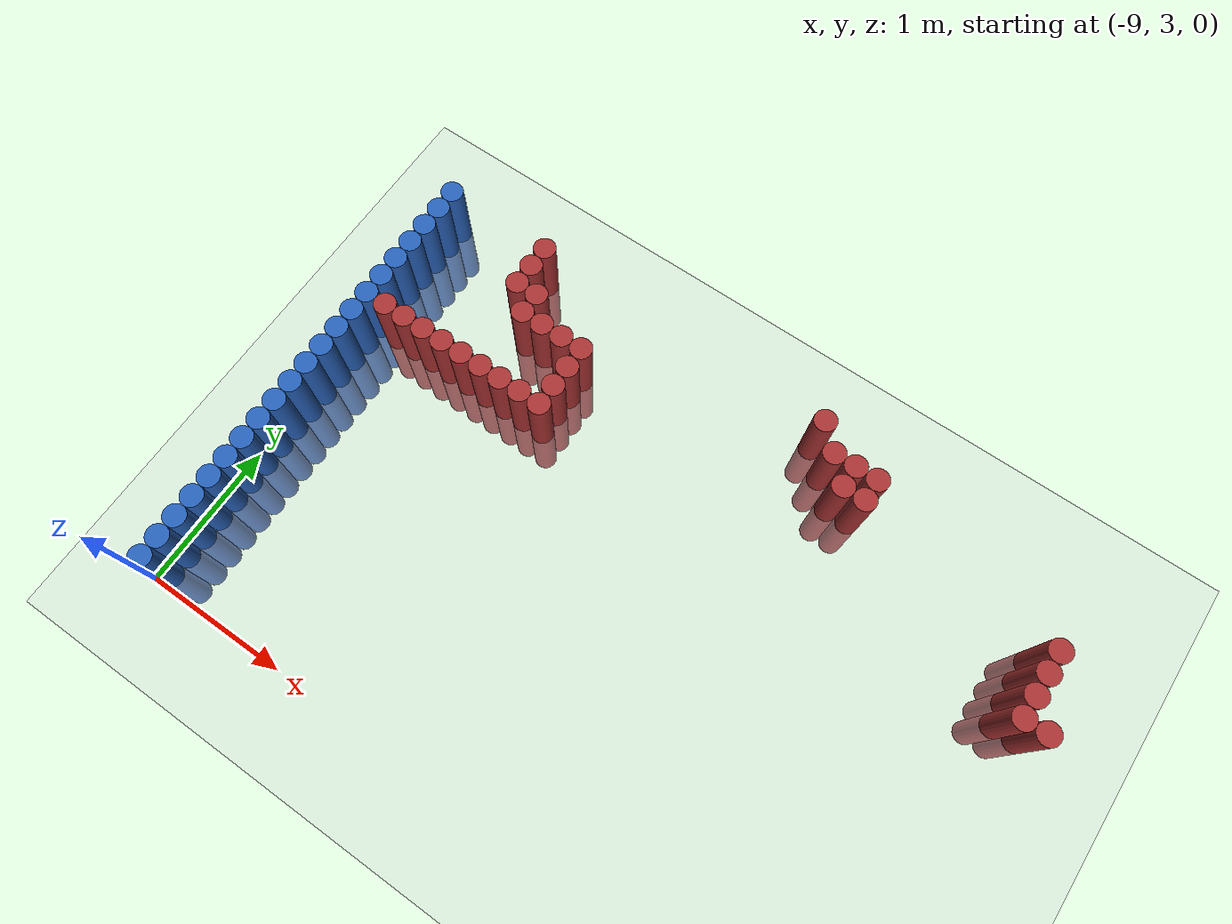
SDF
<sdf version="1.6">
 <world name="default">
  <model name="ground_plane">
   <static>1</static>
   <link name="link">
    <collision name="collision">
     <geometry><plane><normal>0 0 1</normal><size>100 100</size></plane></geometry>
     <surface><friction><ode><mu>100</mu><mu2>50</mu2></ode></friction></surface>
    </collision>
    <visual name="visual">
     <cast_shadows>0</cast_shadows>
     <geometry><plane><normal>0 0 1</normal><size>100 100</size></plane></geometry>
     <material>
      <script><uri>file://media/materials/scripts/gazebo.material</uri><name>Gazebo/Grey</name></script>
     </material>
    </visual>
   </link>
  </model>
  <model name="unit_cylinder_98">
   <static>1</static>
   <pose>-8.925000 3.075000 0.000000 0.000000 0.000000 0.000000</pose>
   <link name="link">
    <inertial>
     <mass>1</mass>
     <inertia><ixx>0.145833</ixx><ixy>0</ixy><ixz>0</ixz><iyy>0.145833</iyy><iyz>0</iyz><izz>0.125</izz></inertia>
    </inertial>
    <collision name="collision">
     <geometry><cylinder><radius>0.075000</radius><length>1</length></cylinder></geometry>
    </collision>
    <visual name="visual">
     <geometry><cylinder><radius>0.075000</radius><length>1</length></cylinder></geometry>
     <material>
      <ambient>0.152000 0.379000 0.720000 1</ambient>
      <diffuse>0.152000 0.379000 0.720000 1</diffuse>
     </material>
     <material>
      <script><name>Gazebo/Grey</name><uri>file://media/materials/scripts/gazebo.material</uri></script>
     </material>
    </visual>
   </link>
  </model>
  <model name="unit_cylinder_100">
   <static>1</static>
   <pose>-8.925000 3.225000 0.000000 0.000000 0.000000 0.000000</pose>
   <link name="link">
    <inertial>
     <mass>1</mass>
     <inertia><ixx>0.145833</ixx><ixy>0</ixy><ixz>0</ixz><iyy>0.145833</iyy><iyz>0</iyz><izz>0.125</izz></inertia>
    </inertial>
    <collision name="collision">
     <geometry><cylinder><radius>0.075000</radius><length>1</length></cylinder></geometry>
    </collision>
    <visual name="visual">
     <geometry><cylinder><radius>0.075000</radius><length>1</length></cylinder></geometry>
     <material>
      <ambient>0.152000 0.379000 0.720000 1</ambient>
      <diffuse>0.152000 0.379000 0.720000 1</diffuse>
     </material>
     <material>
      <script><name>Gazebo/Grey</name><uri>file://media/materials/scripts/gazebo.material</uri></script>
     </material>
    </visual>
   </link>
  </model>
  <model name="unit_cylinder_102">
   <static>1</static>
   <pose>-8.925000 3.375000 0.000000 0.000000 0.000000 0.000000</pose>
   <link name="link">
    <inertial>
     <mass>1</mass>
     <inertia><ixx>0.145833</ixx><ixy>0</ixy><ixz>0</ixz><iyy>0.145833</iyy><iyz>0</iyz><izz>0.125</izz></inertia>
    </inertial>
    <collision name="collision">
     <geometry><cylinder><radius>0.075000</radius><length>1</length></cylinder></geometry>
    </collision>
    <visual name="visual">
     <geometry><cylinder><radius>0.075000</radius><length>1</length></cylinder></geometry>
     <material>
      <ambient>0.152000 0.379000 0.720000 1</ambient>
      <diffuse>0.152000 0.379000 0.720000 1</diffuse>
     </material>
     <material>
      <script><name>Gazebo/Grey</name><uri>file://media/materials/scripts/gazebo.material</uri></script>
     </material>
    </visual>
   </link>
  </model>
  <model name="unit_cylinder_104">
   <static>1</static>
   <pose>-8.925000 3.525000 0.000000 0.000000 0.000000 0.000000</pose>
   <link name="link">
    <inertial>
     <mass>1</mass>
     <inertia><ixx>0.145833</ixx><ixy>0</ixy><ixz>0</ixz><iyy>0.145833</iyy><iyz>0</iyz><izz>0.125</izz></inertia>
    </inertial>
    <collision name="collision">
     <geometry><cylinder><radius>0.075000</radius><length>1</length></cylinder></geometry>
    </collision>
    <visual name="visual">
     <geometry><cylinder><radius>0.075000</radius><length>1</length></cylinder></geometry>
     <material>
      <ambient>0.152000 0.379000 0.720000 1</ambient>
      <diffuse>0.152000 0.379000 0.720000 1</diffuse>
     </material>
     <material>
      <script><name>Gazebo/Grey</name><uri>file://media/materials/scripts/gazebo.material</uri></script>
     </material>
    </visual>
   </link>
  </model>
  <model name="unit_cylinder_106">
   <static>1</static>
   <pose>-8.925000 3.675000 0.000000 0.000000 0.000000 0.000000</pose>
   <link name="link">
    <inertial>
     <mass>1</mass>
     <inertia><ixx>0.145833</ixx><ixy>0</ixy><ixz>0</ixz><iyy>0.145833</iyy><iyz>0</iyz><izz>0.125</izz></inertia>
    </inertial>
    <collision name="collision">
     <geometry><cylinder><radius>0.075000</radius><length>1</length></cylinder></geometry>
    </collision>
    <visual name="visual">
     <geometry><cylinder><radius>0.075000</radius><length>1</length></cylinder></geometry>
     <material>
      <ambient>0.152000 0.379000 0.720000 1</ambient>
      <diffuse>0.152000 0.379000 0.720000 1</diffuse>
     </material>
     <material>
      <script><name>Gazebo/Grey</name><uri>file://media/materials/scripts/gazebo.material</uri></script>
     </material>
    </visual>
   </link>
  </model>
  <model name="unit_cylinder_108">
   <static>1</static>
   <pose>-8.925000 3.825000 0.000000 0.000000 0.000000 0.000000</pose>
   <link name="link">
    <inertial>
     <mass>1</mass>
     <inertia><ixx>0.145833</ixx><ixy>0</ixy><ixz>0</ixz><iyy>0.145833</iyy><iyz>0</iyz><izz>0.125</izz></inertia>
    </inertial>
    <collision name="collision">
     <geometry><cylinder><radius>0.075000</radius><length>1</length></cylinder></geometry>
    </collision>
    <visual name="visual">
     <geometry><cylinder><radius>0.075000</radius><length>1</length></cylinder></geometry>
     <material>
      <ambient>0.152000 0.379000 0.720000 1</ambient>
      <diffuse>0.152000 0.379000 0.720000 1</diffuse>
     </material>
     <material>
      <script><name>Gazebo/Grey</name><uri>file://media/materials/scripts/gazebo.material</uri></script>
     </material>
    </visual>
   </link>
  </model>
  <model name="unit_cylinder_110">
   <static>1</static>
   <pose>-8.925000 3.975000 0.000000 0.000000 0.000000 0.000000</pose>
   <link name="link">
    <inertial>
     <mass>1</mass>
     <inertia><ixx>0.145833</ixx><ixy>0</ixy><ixz>0</ixz><iyy>0.145833</iyy><iyz>0</iyz><izz>0.125</izz></inertia>
    </inertial>
    <collision name="collision">
     <geometry><cylinder><radius>0.075000</radius><length>1</length></cylinder></geometry>
    </collision>
    <visual name="visual">
     <geometry><cylinder><radius>0.075000</radius><length>1</length></cylinder></geometry>
     <material>
      <ambient>0.152000 0.379000 0.720000 1</ambient>
      <diffuse>0.152000 0.379000 0.720000 1</diffuse>
     </material>
     <material>
      <script><name>Gazebo/Grey</name><uri>file://media/materials/scripts/gazebo.material</uri></script>
     </material>
    </visual>
   </link>
  </model>
  <model name="unit_cylinder_112">
   <static>1</static>
   <pose>-8.925000 4.125000 0.000000 0.000000 0.000000 0.000000</pose>
   <link name="link">
    <inertial>
     <mass>1</mass>
     <inertia><ixx>0.145833</ixx><ixy>0</ixy><ixz>0</ixz><iyy>0.145833</iyy><iyz>0</iyz><izz>0.125</izz></inertia>
    </inertial>
    <collision name="collision">
     <geometry><cylinder><radius>0.075000</radius><length>1</length></cylinder></geometry>
    </collision>
    <visual name="visual">
     <geometry><cylinder><radius>0.075000</radius><length>1</length></cylinder></geometry>
     <material>
      <ambient>0.152000 0.379000 0.720000 1</ambient>
      <diffuse>0.152000 0.379000 0.720000 1</diffuse>
     </material>
     <material>
      <script><name>Gazebo/Grey</name><uri>file://media/materials/scripts/gazebo.material</uri></script>
     </material>
    </visual>
   </link>
  </model>
  <model name="unit_cylinder_114">
   <static>1</static>
   <pose>-8.925000 4.275000 0.000000 0.000000 0.000000 0.000000</pose>
   <link name="link">
    <inertial>
     <mass>1</mass>
     <inertia><ixx>0.145833</ixx><ixy>0</ixy><ixz>0</ixz><iyy>0.145833</iyy><iyz>0</iyz><izz>0.125</izz></inertia>
    </inertial>
    <collision name="collision">
     <geometry><cylinder><radius>0.075000</radius><length>1</length></cylinder></geometry>
    </collision>
    <visual name="visual">
     <geometry><cylinder><radius>0.075000</radius><length>1</length></cylinder></geometry>
     <material>
      <ambient>0.152000 0.379000 0.720000 1</ambient>
      <diffuse>0.152000 0.379000 0.720000 1</diffuse>
     </material>
     <material>
      <script><name>Gazebo/Grey</name><uri>file://media/materials/scripts/gazebo.material</uri></script>
     </material>
    </visual>
   </link>
  </model>
  <model name="unit_cylinder_116">
   <static>1</static>
   <pose>-8.925000 4.425000 0.000000 0.000000 0.000000 0.000000</pose>
   <link name="link">
    <inertial>
     <mass>1</mass>
     <inertia><ixx>0.145833</ixx><ixy>0</ixy><ixz>0</ixz><iyy>0.145833</iyy><iyz>0</iyz><izz>0.125</izz></inertia>
    </inertial>
    <collision name="collision">
     <geometry><cylinder><radius>0.075000</radius><length>1</length></cylinder></geometry>
    </collision>
    <visual name="visual">
     <geometry><cylinder><radius>0.075000</radius><length>1</length></cylinder></geometry>
     <material>
      <ambient>0.152000 0.379000 0.720000 1</ambient>
      <diffuse>0.152000 0.379000 0.720000 1</diffuse>
     </material>
     <material>
      <script><name>Gazebo/Grey</name><uri>file://media/materials/scripts/gazebo.material</uri></script>
     </material>
    </visual>
   </link>
  </model>
  <model name="unit_cylinder_118">
   <static>1</static>
   <pose>-8.925000 4.575000 0.000000 0.000000 0.000000 0.000000</pose>
   <link name="link">
    <inertial>
     <mass>1</mass>
     <inertia><ixx>0.145833</ixx><ixy>0</ixy><ixz>0</ixz><iyy>0.145833</iyy><iyz>0</iyz><izz>0.125</izz></inertia>
    </inertial>
    <collision name="collision">
     <geometry><cylinder><radius>0.075000</radius><length>1</length></cylinder></geometry>
    </collision>
    <visual name="visual">
     <geometry><cylinder><radius>0.075000</radius><length>1</length></cylinder></geometry>
     <material>
      <ambient>0.152000 0.379000 0.720000 1</ambient>
      <diffuse>0.152000 0.379000 0.720000 1</diffuse>
     </material>
     <material>
      <script><name>Gazebo/Grey</name><uri>file://media/materials/scripts/gazebo.material</uri></script>
     </material>
    </visual>
   </link>
  </model>
  <model name="unit_cylinder_120">
   <static>1</static>
   <pose>-8.925000 4.725000 0.000000 0.000000 0.000000 0.000000</pose>
   <link name="link">
    <inertial>
     <mass>1</mass>
     <inertia><ixx>0.145833</ixx><ixy>0</ixy><ixz>0</ixz><iyy>0.145833</iyy><iyz>0</iyz><izz>0.125</izz></inertia>
    </inertial>
    <collision name="collision">
     <geometry><cylinder><radius>0.075000</radius><length>1</length></cylinder></geometry>
    </collision>
    <visual name="visual">
     <geometry><cylinder><radius>0.075000</radius><length>1</length></cylinder></geometry>
     <material>
      <ambient>0.152000 0.379000 0.720000 1</ambient>
      <diffuse>0.152000 0.379000 0.720000 1</diffuse>
     </material>
     <material>
      <script><name>Gazebo/Grey</name><uri>file://media/materials/scripts/gazebo.material</uri></script>
     </material>
    </visual>
   </link>
  </model>
  <model name="unit_cylinder_122">
   <static>1</static>
   <pose>-8.925000 4.875000 0.000000 0.000000 0.000000 0.000000</pose>
   <link name="link">
    <inertial>
     <mass>1</mass>
     <inertia><ixx>0.145833</ixx><ixy>0</ixy><ixz>0</ixz><iyy>0.145833</iyy><iyz>0</iyz><izz>0.125</izz></inertia>
    </inertial>
    <collision name="collision">
     <geometry><cylinder><radius>0.075000</radius><length>1</length></cylinder></geometry>
    </collision>
    <visual name="visual">
     <geometry><cylinder><radius>0.075000</radius><length>1</length></cylinder></geometry>
     <material>
      <ambient>0.152000 0.379000 0.720000 1</ambient>
      <diffuse>0.152000 0.379000 0.720000 1</diffuse>
     </material>
     <material>
      <script><name>Gazebo/Grey</name><uri>file://media/materials/scripts/gazebo.material</uri></script>
     </material>
    </visual>
   </link>
  </model>
  <model name="unit_cylinder_124">
   <static>1</static>
   <pose>-8.925000 5.025000 0.000000 0.000000 0.000000 0.000000</pose>
   <link name="link">
    <inertial>
     <mass>1</mass>
     <inertia><ixx>0.145833</ixx><ixy>0</ixy><ixz>0</ixz><iyy>0.145833</iyy><iyz>0</iyz><izz>0.125</izz></inertia>
    </inertial>
    <collision name="collision">
     <geometry><cylinder><radius>0.075000</radius><length>1</length></cylinder></geometry>
    </collision>
    <visual name="visual">
     <geometry><cylinder><radius>0.075000</radius><length>1</length></cylinder></geometry>
     <material>
      <ambient>0.152000 0.379000 0.720000 1</ambient>
      <diffuse>0.152000 0.379000 0.720000 1</diffuse>
     </material>
     <material>
      <script><name>Gazebo/Grey</name><uri>file://media/materials/scripts/gazebo.material</uri></script>
     </material>
    </visual>
   </link>
  </model>
  <model name="unit_cylinder_125">
   <static>1</static>
   <pose>-8.925000 5.175000 0.000000 0.000000 0.000000 0.000000</pose>
   <link name="link">
    <inertial>
     <mass>1</mass>
     <inertia><ixx>0.145833</ixx><ixy>0</ixy><ixz>0</ixz><iyy>0.145833</iyy><iyz>0</iyz><izz>0.125</izz></inertia>
    </inertial>
    <collision name="collision">
     <geometry><cylinder><radius>0.075000</radius><length>1</length></cylinder></geometry>
    </collision>
    <visual name="visual">
     <geometry><cylinder><radius>0.075000</radius><length>1</length></cylinder></geometry>
     <material>
      <ambient>0.152000 0.379000 0.720000 1</ambient>
      <diffuse>0.152000 0.379000 0.720000 1</diffuse>
     </material>
     <material>
      <script><name>Gazebo/Grey</name><uri>file://media/materials/scripts/gazebo.material</uri></script>
     </material>
    </visual>
   </link>
  </model>
  <model name="unit_cylinder_126">
   <static>1</static>
   <pose>-8.925000 5.325000 0.000000 0.000000 0.000000 0.000000</pose>
   <link name="link">
    <inertial>
     <mass>1</mass>
     <inertia><ixx>0.145833</ixx><ixy>0</ixy><ixz>0</ixz><iyy>0.145833</iyy><iyz>0</iyz><izz>0.125</izz></inertia>
    </inertial>
    <collision name="collision">
     <geometry><cylinder><radius>0.075000</radius><length>1</length></cylinder></geometry>
    </collision>
    <visual name="visual">
     <geometry><cylinder><radius>0.075000</radius><length>1</length></cylinder></geometry>
     <material>
      <ambient>0.152000 0.379000 0.720000 1</ambient>
      <diffuse>0.152000 0.379000 0.720000 1</diffuse>
     </material>
     <material>
      <script><name>Gazebo/Grey</name><uri>file://media/materials/scripts/gazebo.material</uri></script>
     </material>
    </visual>
   </link>
  </model>
  <model name="unit_cylinder_127">
   <static>1</static>
   <pose>-8.925000 5.475000 0.000000 0.000000 0.000000 0.000000</pose>
   <link name="link">
    <inertial>
     <mass>1</mass>
     <inertia><ixx>0.145833</ixx><ixy>0</ixy><ixz>0</ixz><iyy>0.145833</iyy><iyz>0</iyz><izz>0.125</izz></inertia>
    </inertial>
    <collision name="collision">
     <geometry><cylinder><radius>0.075000</radius><length>1</length></cylinder></geometry>
    </collision>
    <visual name="visual">
     <geometry><cylinder><radius>0.075000</radius><length>1</length></cylinder></geometry>
     <material>
      <ambient>0.152000 0.379000 0.720000 1</ambient>
      <diffuse>0.152000 0.379000 0.720000 1</diffuse>
     </material>
     <material>
      <script><name>Gazebo/Grey</name><uri>file://media/materials/scripts/gazebo.material</uri></script>
     </material>
    </visual>
   </link>
  </model>
  <model name="unit_cylinder_128">
   <static>1</static>
   <pose>-8.925000 5.625000 0.000000 0.000000 0.000000 0.000000</pose>
   <link name="link">
    <inertial>
     <mass>1</mass>
     <inertia><ixx>0.145833</ixx><ixy>0</ixy><ixz>0</ixz><iyy>0.145833</iyy><iyz>0</iyz><izz>0.125</izz></inertia>
    </inertial>
    <collision name="collision">
     <geometry><cylinder><radius>0.075000</radius><length>1</length></cylinder></geometry>
    </collision>
    <visual name="visual">
     <geometry><cylinder><radius>0.075000</radius><length>1</length></cylinder></geometry>
     <material>
      <ambient>0.152000 0.379000 0.720000 1</ambient>
      <diffuse>0.152000 0.379000 0.720000 1</diffuse>
     </material>
     <material>
      <script><name>Gazebo/Grey</name><uri>file://media/materials/scripts/gazebo.material</uri></script>
     </material>
    </visual>
   </link>
  </model>
  <model name="unit_cylinder_129">
   <static>1</static>
   <pose>-8.925000 5.775000 0.000000 0.000000 0.000000 0.000000</pose>
   <link name="link">
    <inertial>
     <mass>1</mass>
     <inertia><ixx>0.145833</ixx><ixy>0</ixy><ixz>0</ixz><iyy>0.145833</iyy><iyz>0</iyz><izz>0.125</izz></inertia>
    </inertial>
    <collision name="collision">
     <geometry><cylinder><radius>0.075000</radius><length>1</length></cylinder></geometry>
    </collision>
    <visual name="visual">
     <geometry><cylinder><radius>0.075000</radius><length>1</length></cylinder></geometry>
     <material>
      <ambient>0.152000 0.379000 0.720000 1</ambient>
      <diffuse>0.152000 0.379000 0.720000 1</diffuse>
     </material>
     <material>
      <script><name>Gazebo/Grey</name><uri>file://media/materials/scripts/gazebo.material</uri></script>
     </material>
    </visual>
   </link>
  </model>
  <model name="unit_cylinder_130">
   <static>1</static>
   <pose>-8.925000 5.925000 0.000000 0.000000 0.000000 0.000000</pose>
   <link name="link">
    <inertial>
     <mass>1</mass>
     <inertia><ixx>0.145833</ixx><ixy>0</ixy><ixz>0</ixz><iyy>0.145833</iyy><iyz>0</iyz><izz>0.125</izz></inertia>
    </inertial>
    <collision name="collision">
     <geometry><cylinder><radius>0.075000</radius><length>1</length></cylinder></geometry>
    </collision>
    <visual name="visual">
     <geometry><cylinder><radius>0.075000</radius><length>1</length></cylinder></geometry>
     <material>
      <ambient>0.152000 0.379000 0.720000 1</ambient>
      <diffuse>0.152000 0.379000 0.720000 1</diffuse>
     </material>
     <material>
      <script><name>Gazebo/Grey</name><uri>file://media/materials/scripts/gazebo.material</uri></script>
     </material>
    </visual>
   </link>
  </model>
  <model name="unit_cylinder_131">
   <static>1</static>
   <pose>-8.925000 6.075000 0.000000 0.000000 0.000000 0.000000</pose>
   <link name="link">
    <inertial>
     <mass>1</mass>
     <inertia><ixx>0.145833</ixx><ixy>0</ixy><ixz>0</ixz><iyy>0.145833</iyy><iyz>0</iyz><izz>0.125</izz></inertia>
    </inertial>
    <collision name="collision">
     <geometry><cylinder><radius>0.075000</radius><length>1</length></cylinder></geometry>
    </collision>
    <visual name="visual">
     <geometry><cylinder><radius>0.075000</radius><length>1</length></cylinder></geometry>
     <material>
      <ambient>0.152000 0.379000 0.720000 1</ambient>
      <diffuse>0.152000 0.379000 0.720000 1</diffuse>
     </material>
     <material>
      <script><name>Gazebo/Grey</name><uri>file://media/materials/scripts/gazebo.material</uri></script>
     </material>
    </visual>
   </link>
  </model>
  <model name="unit_cylinder_155">
   <static>1</static>
   <pose>-8.775000 5.175000 0.000000 0.000000 0.000000 0.000000</pose>
   <link name="link">
    <inertial>
     <mass>1</mass>
     <inertia><ixx>0.145833</ixx><ixy>0</ixy><ixz>0</ixz><iyy>0.145833</iyy><iyz>0</iyz><izz>0.125</izz></inertia>
    </inertial>
    <collision name="collision">
     <geometry><cylinder><radius>0.075000</radius><length>1</length></cylinder></geometry>
    </collision>
    <visual name="visual">
     <geometry><cylinder><radius>0.075000</radius><length>1</length></cylinder></geometry>
     <material>
      <ambient>0.648000 0.192000 0.192000 1</ambient>
      <diffuse>0.648000 0.192000 0.192000 1</diffuse>
     </material>
     <material>
      <script><name>Gazebo/Grey</name><uri>file://media/materials/scripts/gazebo.material</uri></script>
     </material>
    </visual>
   </link>
  </model>
  <model name="unit_cylinder_157">
   <static>1</static>
   <pose>-8.625000 5.175000 0.000000 0.000000 0.000000 0.000000</pose>
   <link name="link">
    <inertial>
     <mass>1</mass>
     <inertia><ixx>0.145833</ixx><ixy>0</ixy><ixz>0</ixz><iyy>0.145833</iyy><iyz>0</iyz><izz>0.125</izz></inertia>
    </inertial>
    <collision name="collision">
     <geometry><cylinder><radius>0.075000</radius><length>1</length></cylinder></geometry>
    </collision>
    <visual name="visual">
     <geometry><cylinder><radius>0.075000</radius><length>1</length></cylinder></geometry>
     <material>
      <ambient>0.648000 0.192000 0.192000 1</ambient>
      <diffuse>0.648000 0.192000 0.192000 1</diffuse>
     </material>
     <material>
      <script><name>Gazebo/Grey</name><uri>file://media/materials/scripts/gazebo.material</uri></script>
     </material>
    </visual>
   </link>
  </model>
  <model name="unit_cylinder_159">
   <static>1</static>
   <pose>-8.475000 5.175000 0.000000 0.000000 0.000000 0.000000</pose>
   <link name="link">
    <inertial>
     <mass>1</mass>
     <inertia><ixx>0.145833</ixx><ixy>0</ixy><ixz>0</ixz><iyy>0.145833</iyy><iyz>0</iyz><izz>0.125</izz></inertia>
    </inertial>
    <collision name="collision">
     <geometry><cylinder><radius>0.075000</radius><length>1</length></cylinder></geometry>
    </collision>
    <visual name="visual">
     <geometry><cylinder><radius>0.075000</radius><length>1</length></cylinder></geometry>
     <material>
      <ambient>0.648000 0.192000 0.192000 1</ambient>
      <diffuse>0.648000 0.192000 0.192000 1</diffuse>
     </material>
     <material>
      <script><name>Gazebo/Grey</name><uri>file://media/materials/scripts/gazebo.material</uri></script>
     </material>
    </visual>
   </link>
  </model>
  <model name="unit_cylinder_161">
   <static>1</static>
   <pose>-8.325000 5.175000 0.000000 0.000000 0.000000 0.000000</pose>
   <link name="link">
    <inertial>
     <mass>1</mass>
     <inertia><ixx>0.145833</ixx><ixy>0</ixy><ixz>0</ixz><iyy>0.145833</iyy><iyz>0</iyz><izz>0.125</izz></inertia>
    </inertial>
    <collision name="collision">
     <geometry><cylinder><radius>0.075000</radius><length>1</length></cylinder></geometry>
    </collision>
    <visual name="visual">
     <geometry><cylinder><radius>0.075000</radius><length>1</length></cylinder></geometry>
     <material>
      <ambient>0.648000 0.192000 0.192000 1</ambient>
      <diffuse>0.648000 0.192000 0.192000 1</diffuse>
     </material>
     <material>
      <script><name>Gazebo/Grey</name><uri>file://media/materials/scripts/gazebo.material</uri></script>
     </material>
    </visual>
   </link>
  </model>
  <model name="unit_cylinder_163">
   <static>1</static>
   <pose>-8.175000 5.175000 0.000000 0.000000 0.000000 0.000000</pose>
   <link name="link">
    <inertial>
     <mass>1</mass>
     <inertia><ixx>0.145833</ixx><ixy>0</ixy><ixz>0</ixz><iyy>0.145833</iyy><iyz>0</iyz><izz>0.125</izz></inertia>
    </inertial>
    <collision name="collision">
     <geometry><cylinder><radius>0.075000</radius><length>1</length></cylinder></geometry>
    </collision>
    <visual name="visual">
     <geometry><cylinder><radius>0.075000</radius><length>1</length></cylinder></geometry>
     <material>
      <ambient>0.648000 0.192000 0.192000 1</ambient>
      <diffuse>0.648000 0.192000 0.192000 1</diffuse>
     </material>
     <material>
      <script><name>Gazebo/Grey</name><uri>file://media/materials/scripts/gazebo.material</uri></script>
     </material>
    </visual>
   </link>
  </model>
  <model name="unit_cylinder_164">
   <static>1</static>
   <pose>-8.175000 5.775000 0.000000 0.000000 0.000000 0.000000</pose>
   <link name="link">
    <inertial>
     <mass>1</mass>
     <inertia><ixx>0.145833</ixx><ixy>0</ixy><ixz>0</ixz><iyy>0.145833</iyy><iyz>0</iyz><izz>0.125</izz></inertia>
    </inertial>
    <collision name="collision">
     <geometry><cylinder><radius>0.075000</radius><length>1</length></cylinder></geometry>
    </collision>
    <visual name="visual">
     <geometry><cylinder><radius>0.075000</radius><length>1</length></cylinder></geometry>
     <material>
      <ambient>0.648000 0.192000 0.192000 1</ambient>
      <diffuse>0.648000 0.192000 0.192000 1</diffuse>
     </material>
     <material>
      <script><name>Gazebo/Grey</name><uri>file://media/materials/scripts/gazebo.material</uri></script>
     </material>
    </visual>
   </link>
  </model>
  <model name="unit_cylinder_165">
   <static>1</static>
   <pose>-8.175000 5.925000 0.000000 0.000000 0.000000 0.000000</pose>
   <link name="link">
    <inertial>
     <mass>1</mass>
     <inertia><ixx>0.145833</ixx><ixy>0</ixy><ixz>0</ixz><iyy>0.145833</iyy><iyz>0</iyz><izz>0.125</izz></inertia>
    </inertial>
    <collision name="collision">
     <geometry><cylinder><radius>0.075000</radius><length>1</length></cylinder></geometry>
    </collision>
    <visual name="visual">
     <geometry><cylinder><radius>0.075000</radius><length>1</length></cylinder></geometry>
     <material>
      <ambient>0.648000 0.192000 0.192000 1</ambient>
      <diffuse>0.648000 0.192000 0.192000 1</diffuse>
     </material>
     <material>
      <script><name>Gazebo/Grey</name><uri>file://media/materials/scripts/gazebo.material</uri></script>
     </material>
    </visual>
   </link>
  </model>
  <model name="unit_cylinder_166">
   <static>1</static>
   <pose>-8.175000 6.075000 0.000000 0.000000 0.000000 0.000000</pose>
   <link name="link">
    <inertial>
     <mass>1</mass>
     <inertia><ixx>0.145833</ixx><ixy>0</ixy><ixz>0</ixz><iyy>0.145833</iyy><iyz>0</iyz><izz>0.125</izz></inertia>
    </inertial>
    <collision name="collision">
     <geometry><cylinder><radius>0.075000</radius><length>1</length></cylinder></geometry>
    </collision>
    <visual name="visual">
     <geometry><cylinder><radius>0.075000</radius><length>1</length></cylinder></geometry>
     <material>
      <ambient>0.648000 0.192000 0.192000 1</ambient>
      <diffuse>0.648000 0.192000 0.192000 1</diffuse>
     </material>
     <material>
      <script><name>Gazebo/Grey</name><uri>file://media/materials/scripts/gazebo.material</uri></script>
     </material>
    </visual>
   </link>
  </model>
  <model name="unit_cylinder_184">
   <static>1</static>
   <pose>-8.025000 5.175000 0.000000 0.000000 0.000000 0.000000</pose>
   <link name="link">
    <inertial>
     <mass>1</mass>
     <inertia><ixx>0.145833</ixx><ixy>0</ixy><ixz>0</ixz><iyy>0.145833</iyy><iyz>0</iyz><izz>0.125</izz></inertia>
    </inertial>
    <collision name="collision">
     <geometry><cylinder><radius>0.075000</radius><length>1</length></cylinder></geometry>
    </collision>
    <visual name="visual">
     <geometry><cylinder><radius>0.075000</radius><length>1</length></cylinder></geometry>
     <material>
      <ambient>0.648000 0.192000 0.192000 1</ambient>
      <diffuse>0.648000 0.192000 0.192000 1</diffuse>
     </material>
     <material>
      <script><name>Gazebo/Grey</name><uri>file://media/materials/scripts/gazebo.material</uri></script>
     </material>
    </visual>
   </link>
  </model>
  <model name="unit_cylinder_185">
   <static>1</static>
   <pose>-8.025000 5.625000 0.000000 0.000000 0.000000 0.000000</pose>
   <link name="link">
    <inertial>
     <mass>1</mass>
     <inertia><ixx>0.145833</ixx><ixy>0</ixy><ixz>0</ixz><iyy>0.145833</iyy><iyz>0</iyz><izz>0.125</izz></inertia>
    </inertial>
    <collision name="collision">
     <geometry><cylinder><radius>0.075000</radius><length>1</length></cylinder></geometry>
    </collision>
    <visual name="visual">
     <geometry><cylinder><radius>0.075000</radius><length>1</length></cylinder></geometry>
     <material>
      <ambient>0.648000 0.192000 0.192000 1</ambient>
      <diffuse>0.648000 0.192000 0.192000 1</diffuse>
     </material>
     <material>
      <script><name>Gazebo/Grey</name><uri>file://media/materials/scripts/gazebo.material</uri></script>
     </material>
    </visual>
   </link>
  </model>
  <model name="unit_cylinder_186">
   <static>1</static>
   <pose>-8.025000 5.775000 0.000000 0.000000 0.000000 0.000000</pose>
   <link name="link">
    <inertial>
     <mass>1</mass>
     <inertia><ixx>0.145833</ixx><ixy>0</ixy><ixz>0</ixz><iyy>0.145833</iyy><iyz>0</iyz><izz>0.125</izz></inertia>
    </inertial>
    <collision name="collision">
     <geometry><cylinder><radius>0.075000</radius><length>1</length></cylinder></geometry>
    </collision>
    <visual name="visual">
     <geometry><cylinder><radius>0.075000</radius><length>1</length></cylinder></geometry>
     <material>
      <ambient>0.648000 0.192000 0.192000 1</ambient>
      <diffuse>0.648000 0.192000 0.192000 1</diffuse>
     </material>
     <material>
      <script><name>Gazebo/Grey</name><uri>file://media/materials/scripts/gazebo.material</uri></script>
     </material>
    </visual>
   </link>
  </model>
  <model name="unit_cylinder_190">
   <static>1</static>
   <pose>-7.875000 5.175000 0.000000 0.000000 0.000000 0.000000</pose>
   <link name="link">
    <inertial>
     <mass>1</mass>
     <inertia><ixx>0.145833</ixx><ixy>0</ixy><ixz>0</ixz><iyy>0.145833</iyy><iyz>0</iyz><izz>0.125</izz></inertia>
    </inertial>
    <collision name="collision">
     <geometry><cylinder><radius>0.075000</radius><length>1</length></cylinder></geometry>
    </collision>
    <visual name="visual">
     <geometry><cylinder><radius>0.075000</radius><length>1</length></cylinder></geometry>
     <material>
      <ambient>0.648000 0.192000 0.192000 1</ambient>
      <diffuse>0.648000 0.192000 0.192000 1</diffuse>
     </material>
     <material>
      <script><name>Gazebo/Grey</name><uri>file://media/materials/scripts/gazebo.material</uri></script>
     </material>
    </visual>
   </link>
  </model>
  <model name="unit_cylinder_191">
   <static>1</static>
   <pose>-7.875000 5.625000 0.000000 0.000000 0.000000 0.000000</pose>
   <link name="link">
    <inertial>
     <mass>1</mass>
     <inertia><ixx>0.145833</ixx><ixy>0</ixy><ixz>0</ixz><iyy>0.145833</iyy><iyz>0</iyz><izz>0.125</izz></inertia>
    </inertial>
    <collision name="collision">
     <geometry><cylinder><radius>0.075000</radius><length>1</length></cylinder></geometry>
    </collision>
    <visual name="visual">
     <geometry><cylinder><radius>0.075000</radius><length>1</length></cylinder></geometry>
     <material>
      <ambient>0.648000 0.192000 0.192000 1</ambient>
      <diffuse>0.648000 0.192000 0.192000 1</diffuse>
     </material>
     <material>
      <script><name>Gazebo/Grey</name><uri>file://media/materials/scripts/gazebo.material</uri></script>
     </material>
    </visual>
   </link>
  </model>
  <model name="unit_cylinder_194">
   <static>1</static>
   <pose>-7.725000 5.175000 0.000000 0.000000 0.000000 0.000000</pose>
   <link name="link">
    <inertial>
     <mass>1</mass>
     <inertia><ixx>0.145833</ixx><ixy>0</ixy><ixz>0</ixz><iyy>0.145833</iyy><iyz>0</iyz><izz>0.125</izz></inertia>
    </inertial>
    <collision name="collision">
     <geometry><cylinder><radius>0.075000</radius><length>1</length></cylinder></geometry>
    </collision>
    <visual name="visual">
     <geometry><cylinder><radius>0.075000</radius><length>1</length></cylinder></geometry>
     <material>
      <ambient>0.648000 0.192000 0.192000 1</ambient>
      <diffuse>0.648000 0.192000 0.192000 1</diffuse>
     </material>
     <material>
      <script><name>Gazebo/Grey</name><uri>file://media/materials/scripts/gazebo.material</uri></script>
     </material>
    </visual>
   </link>
  </model>
  <model name="unit_cylinder_195">
   <static>1</static>
   <pose>-7.725000 5.625000 0.000000 0.000000 0.000000 0.000000</pose>
   <link name="link">
    <inertial>
     <mass>1</mass>
     <inertia><ixx>0.145833</ixx><ixy>0</ixy><ixz>0</ixz><iyy>0.145833</iyy><iyz>0</iyz><izz>0.125</izz></inertia>
    </inertial>
    <collision name="collision">
     <geometry><cylinder><radius>0.075000</radius><length>1</length></cylinder></geometry>
    </collision>
    <visual name="visual">
     <geometry><cylinder><radius>0.075000</radius><length>1</length></cylinder></geometry>
     <material>
      <ambient>0.648000 0.192000 0.192000 1</ambient>
      <diffuse>0.648000 0.192000 0.192000 1</diffuse>
     </material>
     <material>
      <script><name>Gazebo/Grey</name><uri>file://media/materials/scripts/gazebo.material</uri></script>
     </material>
    </visual>
   </link>
  </model>
  <model name="unit_cylinder_198">
   <static>1</static>
   <pose>-7.575000 5.175000 0.000000 0.000000 0.000000 0.000000</pose>
   <link name="link">
    <inertial>
     <mass>1</mass>
     <inertia><ixx>0.145833</ixx><ixy>0</ixy><ixz>0</ixz><iyy>0.145833</iyy><iyz>0</iyz><izz>0.125</izz></inertia>
    </inertial>
    <collision name="collision">
     <geometry><cylinder><radius>0.075000</radius><length>1</length></cylinder></geometry>
    </collision>
    <visual name="visual">
     <geometry><cylinder><radius>0.075000</radius><length>1</length></cylinder></geometry>
     <material>
      <ambient>0.648000 0.192000 0.192000 1</ambient>
      <diffuse>0.648000 0.192000 0.192000 1</diffuse>
     </material>
     <material>
      <script><name>Gazebo/Grey</name><uri>file://media/materials/scripts/gazebo.material</uri></script>
     </material>
    </visual>
   </link>
  </model>
  <model name="unit_cylinder_199">
   <static>1</static>
   <pose>-7.575000 5.325000 0.000000 0.000000 0.000000 0.000000</pose>
   <link name="link">
    <inertial>
     <mass>1</mass>
     <inertia><ixx>0.145833</ixx><ixy>0</ixy><ixz>0</ixz><iyy>0.145833</iyy><iyz>0</iyz><izz>0.125</izz></inertia>
    </inertial>
    <collision name="collision">
     <geometry><cylinder><radius>0.075000</radius><length>1</length></cylinder></geometry>
    </collision>
    <visual name="visual">
     <geometry><cylinder><radius>0.075000</radius><length>1</length></cylinder></geometry>
     <material>
      <ambient>0.648000 0.192000 0.192000 1</ambient>
      <diffuse>0.648000 0.192000 0.192000 1</diffuse>
     </material>
     <material>
      <script><name>Gazebo/Grey</name><uri>file://media/materials/scripts/gazebo.material</uri></script>
     </material>
    </visual>
   </link>
  </model>
  <model name="unit_cylinder_200">
   <static>1</static>
   <pose>-7.575000 5.475000 0.000000 0.000000 0.000000 0.000000</pose>
   <link name="link">
    <inertial>
     <mass>1</mass>
     <inertia><ixx>0.145833</ixx><ixy>0</ixy><ixz>0</ixz><iyy>0.145833</iyy><iyz>0</iyz><izz>0.125</izz></inertia>
    </inertial>
    <collision name="collision">
     <geometry><cylinder><radius>0.075000</radius><length>1</length></cylinder></geometry>
    </collision>
    <visual name="visual">
     <geometry><cylinder><radius>0.075000</radius><length>1</length></cylinder></geometry>
     <material>
      <ambient>0.648000 0.192000 0.192000 1</ambient>
      <diffuse>0.648000 0.192000 0.192000 1</diffuse>
     </material>
     <material>
      <script><name>Gazebo/Grey</name><uri>file://media/materials/scripts/gazebo.material</uri></script>
     </material>
    </visual>
   </link>
  </model>
  <model name="unit_cylinder_201">
   <static>1</static>
   <pose>-7.575000 5.625000 0.000000 0.000000 0.000000 0.000000</pose>
   <link name="link">
    <inertial>
     <mass>1</mass>
     <inertia><ixx>0.145833</ixx><ixy>0</ixy><ixz>0</ixz><iyy>0.145833</iyy><iyz>0</iyz><izz>0.125</izz></inertia>
    </inertial>
    <collision name="collision">
     <geometry><cylinder><radius>0.075000</radius><length>1</length></cylinder></geometry>
    </collision>
    <visual name="visual">
     <geometry><cylinder><radius>0.075000</radius><length>1</length></cylinder></geometry>
     <material>
      <ambient>0.648000 0.192000 0.192000 1</ambient>
      <diffuse>0.648000 0.192000 0.192000 1</diffuse>
     </material>
     <material>
      <script><name>Gazebo/Grey</name><uri>file://media/materials/scripts/gazebo.material</uri></script>
     </material>
    </visual>
   </link>
  </model>
  <model name="unit_cylinder_233">
   <static>1</static>
   <pose>-6.075000 6.075000 0.000000 0.000000 0.000000 0.000000</pose>
   <link name="link">
    <inertial>
     <mass>1</mass>
     <inertia><ixx>0.145833</ixx><ixy>0</ixy><ixz>0</ixz><iyy>0.145833</iyy><iyz>0</iyz><izz>0.125</izz></inertia>
    </inertial>
    <collision name="collision">
     <geometry><cylinder><radius>0.075000</radius><length>1</length></cylinder></geometry>
    </collision>
    <visual name="visual">
     <geometry><cylinder><radius>0.075000</radius><length>1</length></cylinder></geometry>
     <material>
      <ambient>0.648000 0.192000 0.192000 1</ambient>
      <diffuse>0.648000 0.192000 0.192000 1</diffuse>
     </material>
     <material>
      <script><name>Gazebo/Grey</name><uri>file://media/materials/scripts/gazebo.material</uri></script>
     </material>
    </visual>
   </link>
  </model>
  <model name="unit_cylinder_236">
   <static>1</static>
   <pose>-5.925000 5.925000 0.000000 0.000000 0.000000 0.000000</pose>
   <link name="link">
    <inertial>
     <mass>1</mass>
     <inertia><ixx>0.145833</ixx><ixy>0</ixy><ixz>0</ixz><iyy>0.145833</iyy><iyz>0</iyz><izz>0.125</izz></inertia>
    </inertial>
    <collision name="collision">
     <geometry><cylinder><radius>0.075000</radius><length>1</length></cylinder></geometry>
    </collision>
    <visual name="visual">
     <geometry><cylinder><radius>0.075000</radius><length>1</length></cylinder></geometry>
     <material>
      <ambient>0.648000 0.192000 0.192000 1</ambient>
      <diffuse>0.648000 0.192000 0.192000 1</diffuse>
     </material>
     <material>
      <script><name>Gazebo/Grey</name><uri>file://media/materials/scripts/gazebo.material</uri></script>
     </material>
    </visual>
   </link>
  </model>
  <model name="unit_cylinder_237">
   <static>1</static>
   <pose>-5.775000 5.775000 0.000000 0.000000 0.000000 0.000000</pose>
   <link name="link">
    <inertial>
     <mass>1</mass>
     <inertia><ixx>0.145833</ixx><ixy>0</ixy><ixz>0</ixz><iyy>0.145833</iyy><iyz>0</iyz><izz>0.125</izz></inertia>
    </inertial>
    <collision name="collision">
     <geometry><cylinder><radius>0.075000</radius><length>1</length></cylinder></geometry>
    </collision>
    <visual name="visual">
     <geometry><cylinder><radius>0.075000</radius><length>1</length></cylinder></geometry>
     <material>
      <ambient>0.648000 0.192000 0.192000 1</ambient>
      <diffuse>0.648000 0.192000 0.192000 1</diffuse>
     </material>
     <material>
      <script><name>Gazebo/Grey</name><uri>file://media/materials/scripts/gazebo.material</uri></script>
     </material>
    </visual>
   </link>
  </model>
  <model name="unit_cylinder_238">
   <static>1</static>
   <pose>-5.775000 5.925000 0.000000 0.000000 0.000000 0.000000</pose>
   <link name="link">
    <inertial>
     <mass>1</mass>
     <inertia><ixx>0.145833</ixx><ixy>0</ixy><ixz>0</ixz><iyy>0.145833</iyy><iyz>0</iyz><izz>0.125</izz></inertia>
    </inertial>
    <collision name="collision">
     <geometry><cylinder><radius>0.075000</radius><length>1</length></cylinder></geometry>
    </collision>
    <visual name="visual">
     <geometry><cylinder><radius>0.075000</radius><length>1</length></cylinder></geometry>
     <material>
      <ambient>0.648000 0.192000 0.192000 1</ambient>
      <diffuse>0.648000 0.192000 0.192000 1</diffuse>
     </material>
     <material>
      <script><name>Gazebo/Grey</name><uri>file://media/materials/scripts/gazebo.material</uri></script>
     </material>
    </visual>
   </link>
  </model>
  <model name="unit_cylinder_240">
   <static>1</static>
   <pose>-5.625000 5.775000 0.000000 0.000000 0.000000 0.000000</pose>
   <link name="link">
    <inertial>
     <mass>1</mass>
     <inertia><ixx>0.145833</ixx><ixy>0</ixy><ixz>0</ixz><iyy>0.145833</iyy><iyz>0</iyz><izz>0.125</izz></inertia>
    </inertial>
    <collision name="collision">
     <geometry><cylinder><radius>0.075000</radius><length>1</length></cylinder></geometry>
    </collision>
    <visual name="visual">
     <geometry><cylinder><radius>0.075000</radius><length>1</length></cylinder></geometry>
     <material>
      <ambient>0.648000 0.192000 0.192000 1</ambient>
      <diffuse>0.648000 0.192000 0.192000 1</diffuse>
     </material>
     <material>
      <script><name>Gazebo/Grey</name><uri>file://media/materials/scripts/gazebo.material</uri></script>
     </material>
    </visual>
   </link>
  </model>
  <model name="unit_cylinder_241">
   <static>1</static>
   <pose>-5.625000 5.925000 0.000000 0.000000 0.000000 0.000000</pose>
   <link name="link">
    <inertial>
     <mass>1</mass>
     <inertia><ixx>0.145833</ixx><ixy>0</ixy><ixz>0</ixz><iyy>0.145833</iyy><iyz>0</iyz><izz>0.125</izz></inertia>
    </inertial>
    <collision name="collision">
     <geometry><cylinder><radius>0.075000</radius><length>1</length></cylinder></geometry>
    </collision>
    <visual name="visual">
     <geometry><cylinder><radius>0.075000</radius><length>1</length></cylinder></geometry>
     <material>
      <ambient>0.648000 0.192000 0.192000 1</ambient>
      <diffuse>0.648000 0.192000 0.192000 1</diffuse>
     </material>
     <material>
      <script><name>Gazebo/Grey</name><uri>file://media/materials/scripts/gazebo.material</uri></script>
     </material>
    </visual>
   </link>
  </model>
  <model name="unit_cylinder_283">
   <static>1</static>
   <pose>-4.275000 5.175000 0.000000 0.000000 0.000000 0.000000</pose>
   <link name="link">
    <inertial>
     <mass>1</mass>
     <inertia><ixx>0.145833</ixx><ixy>0</ixy><ixz>0</ixz><iyy>0.145833</iyy><iyz>0</iyz><izz>0.125</izz></inertia>
    </inertial>
    <collision name="collision">
     <geometry><cylinder><radius>0.075000</radius><length>1</length></cylinder></geometry>
    </collision>
    <visual name="visual">
     <geometry><cylinder><radius>0.075000</radius><length>1</length></cylinder></geometry>
     <material>
      <ambient>0.648000 0.192000 0.192000 1</ambient>
      <diffuse>0.648000 0.192000 0.192000 1</diffuse>
     </material>
     <material>
      <script><name>Gazebo/Grey</name><uri>file://media/materials/scripts/gazebo.material</uri></script>
     </material>
    </visual>
   </link>
  </model>
  <model name="unit_cylinder_284">
   <static>1</static>
   <pose>-4.275000 5.325000 0.000000 0.000000 0.000000 0.000000</pose>
   <link name="link">
    <inertial>
     <mass>1</mass>
     <inertia><ixx>0.145833</ixx><ixy>0</ixy><ixz>0</ixz><iyy>0.145833</iyy><iyz>0</iyz><izz>0.125</izz></inertia>
    </inertial>
    <collision name="collision">
     <geometry><cylinder><radius>0.075000</radius><length>1</length></cylinder></geometry>
    </collision>
    <visual name="visual">
     <geometry><cylinder><radius>0.075000</radius><length>1</length></cylinder></geometry>
     <material>
      <ambient>0.648000 0.192000 0.192000 1</ambient>
      <diffuse>0.648000 0.192000 0.192000 1</diffuse>
     </material>
     <material>
      <script><name>Gazebo/Grey</name><uri>file://media/materials/scripts/gazebo.material</uri></script>
     </material>
    </visual>
   </link>
  </model>
  <model name="unit_cylinder_285">
   <static>1</static>
   <pose>-4.275000 5.475000 0.000000 0.000000 0.000000 0.000000</pose>
   <link name="link">
    <inertial>
     <mass>1</mass>
     <inertia><ixx>0.145833</ixx><ixy>0</ixy><ixz>0</ixz><iyy>0.145833</iyy><iyz>0</iyz><izz>0.125</izz></inertia>
    </inertial>
    <collision name="collision">
     <geometry><cylinder><radius>0.075000</radius><length>1</length></cylinder></geometry>
    </collision>
    <visual name="visual">
     <geometry><cylinder><radius>0.075000</radius><length>1</length></cylinder></geometry>
     <material>
      <ambient>0.648000 0.192000 0.192000 1</ambient>
      <diffuse>0.648000 0.192000 0.192000 1</diffuse>
     </material>
     <material>
      <script><name>Gazebo/Grey</name><uri>file://media/materials/scripts/gazebo.material</uri></script>
     </material>
    </visual>
   </link>
  </model>
  <model name="unit_cylinder_286">
   <static>1</static>
   <pose>-4.275000 5.625000 0.000000 0.000000 0.000000 0.000000</pose>
   <link name="link">
    <inertial>
     <mass>1</mass>
     <inertia><ixx>0.145833</ixx><ixy>0</ixy><ixz>0</ixz><iyy>0.145833</iyy><iyz>0</iyz><izz>0.125</izz></inertia>
    </inertial>
    <collision name="collision">
     <geometry><cylinder><radius>0.075000</radius><length>1</length></cylinder></geometry>
    </collision>
    <visual name="visual">
     <geometry><cylinder><radius>0.075000</radius><length>1</length></cylinder></geometry>
     <material>
      <ambient>0.648000 0.192000 0.192000 1</ambient>
      <diffuse>0.648000 0.192000 0.192000 1</diffuse>
     </material>
     <material>
      <script><name>Gazebo/Grey</name><uri>file://media/materials/scripts/gazebo.material</uri></script>
     </material>
    </visual>
   </link>
  </model>
  <model name="unit_cylinder_294">
   <static>1</static>
   <pose>-4.125000 5.175000 0.000000 0.000000 0.000000 0.000000</pose>
   <link name="link">
    <inertial>
     <mass>1</mass>
     <inertia><ixx>0.145833</ixx><ixy>0</ixy><ixz>0</ixz><iyy>0.145833</iyy><iyz>0</iyz><izz>0.125</izz></inertia>
    </inertial>
    <collision name="collision">
     <geometry><cylinder><radius>0.075000</radius><length>1</length></cylinder></geometry>
    </collision>
    <visual name="visual">
     <geometry><cylinder><radius>0.075000</radius><length>1</length></cylinder></geometry>
     <material>
      <ambient>0.648000 0.192000 0.192000 1</ambient>
      <diffuse>0.648000 0.192000 0.192000 1</diffuse>
     </material>
     <material>
      <script><name>Gazebo/Grey</name><uri>file://media/materials/scripts/gazebo.material</uri></script>
     </material>
    </visual>
   </link>
  </model>
 </world>
</sdf>
